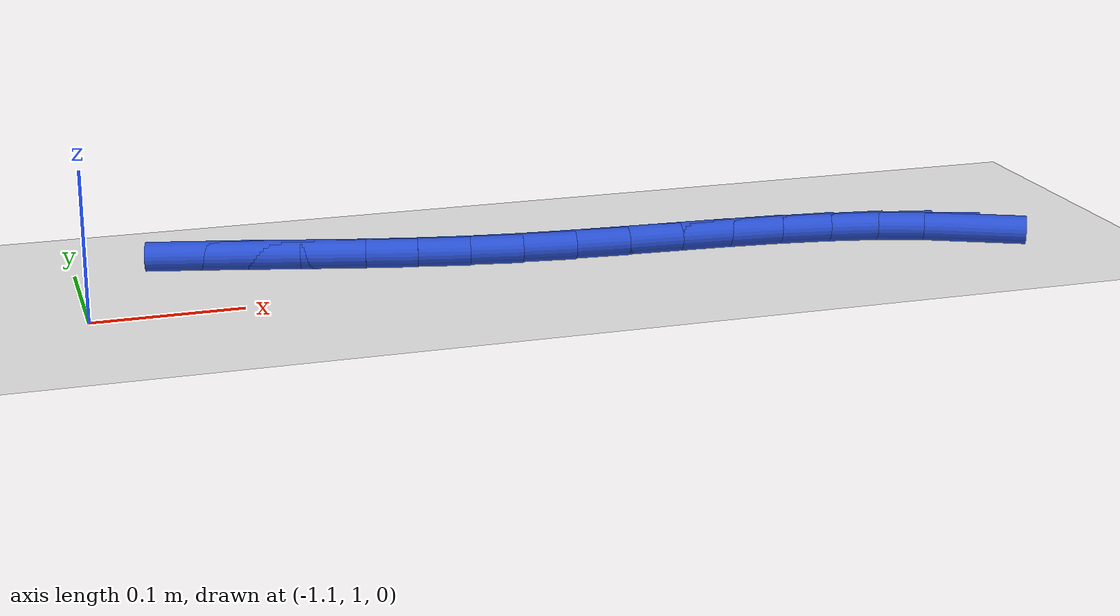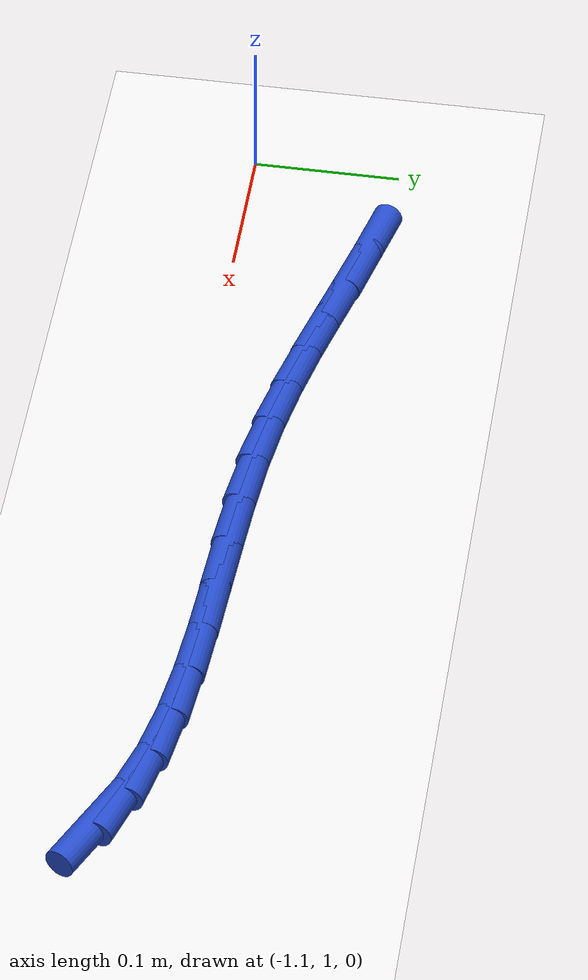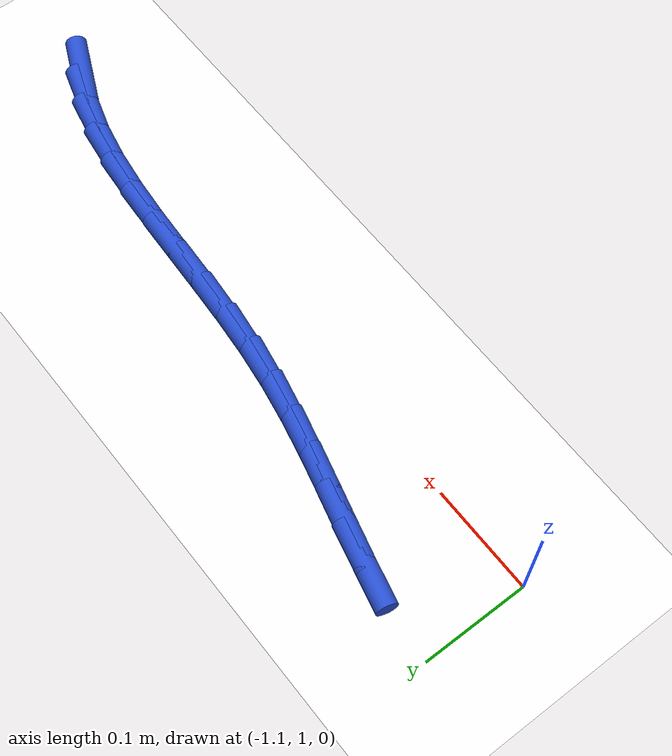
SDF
<sdf version="1.6">
 <world name="default">
  <model name="ground_plane">
   <static>1</static>
   <link name="link">
    <collision name="collision">
     <geometry><plane><normal>0 0 1</normal><size>100 100</size></plane></geometry>
     <surface><friction><ode><mu>100</mu><mu2>50</mu2></ode></friction></surface>
    </collision>
    <visual name="visual">
     <cast_shadows>0</cast_shadows>
     <geometry><plane><normal>0 0 1</normal><size>100 100</size></plane></geometry>
     <material>
      <script><uri>file://media/materials/scripts/gazebo.material</uri><name>Gazebo/WhiteGlow</name></script>
     </material>
    </visual>
   </link>
  </model>
  <model name="line">
   <link name="link_32">
    <pose>-0.48316314550023687 0.9966589572328235 0.01 0 1.57 -0.4373177974308187</pose>
    <collision name="collision">
     <geometry><cylinder><radius>0.01</radius><length>0.08</length></cylinder></geometry>
    </collision>
    <visual name="visual">
     <material>
      <script><name>Gazebo/Blue</name><uri>file://media/materials/scripts/gazebo.material</uri></script>
     </material>
     <geometry><cylinder><radius>0.01</radius><length>0.08</length></cylinder></geometry>
    </visual>
   </link>
   <link name="link_33">
    <pose>-0.5122079923193046 1.0102376549304726 0.01 0 1.57 -0.30500779651711574</pose>
    <collision name="collision">
     <geometry><cylinder><radius>0.01</radius><length>0.08</length></cylinder></geometry>
    </collision>
    <visual name="visual">
     <material>
      <script><name>Gazebo/Blue</name><uri>file://media/materials/scripts/gazebo.material</uri></script>
     </material>
     <geometry><cylinder><radius>0.01</radius><length>0.08</length></cylinder></geometry>
    </visual>
   </link>
   <link name="link_34">
    <pose>-0.5439549012439873 1.0202325912781687 0.01 0 1.57 -0.20490496469624225</pose>
    <collision name="collision">
     <geometry><cylinder><radius>0.01</radius><length>0.08</length></cylinder></geometry>
    </collision>
    <visual name="visual">
     <material>
      <script><name>Gazebo/Blue</name><uri>file://media/materials/scripts/gazebo.material</uri></script>
     </material>
     <geometry><cylinder><radius>0.01</radius><length>0.08</length></cylinder></geometry>
    </visual>
   </link>
   <link name="link_35">
    <pose>-0.5779444262157611 1.0272963513001305 0.01 0 1.57 -0.13297657358169426</pose>
    <collision name="collision">
     <geometry><cylinder><radius>0.01</radius><length>0.08</length></cylinder></geometry>
    </collision>
    <visual name="visual">
     <material>
      <script><name>Gazebo/Blue</name><uri>file://media/materials/scripts/gazebo.material</uri></script>
     </material>
     <geometry><cylinder><radius>0.01</radius><length>0.08</length></cylinder></geometry>
    </visual>
   </link>
   <link name="link_36">
    <pose>-0.6137171211761024 1.0320815200205775 0.01 0 1.57 -0.08495586529718346</pose>
    <collision name="collision">
     <geometry><cylinder><radius>0.01</radius><length>0.08</length></cylinder></geometry>
    </collision>
    <visual name="visual">
     <material>
      <script><name>Gazebo/Blue</name><uri>file://media/materials/scripts/gazebo.material</uri></script>
     </material>
     <geometry><cylinder><radius>0.01</radius><length>0.08</length></cylinder></geometry>
    </visual>
   </link>
   <link name="link_37">
    <pose>-0.6508135400664872 1.0352406824637286 0.01 0 1.57 -0.057515553515279275</pose>
    <collision name="collision">
     <geometry><cylinder><radius>0.01</radius><length>0.08</length></cylinder></geometry>
    </collision>
    <visual name="visual">
     <material>
      <script><name>Gazebo/Blue</name><uri>file://media/materials/scripts/gazebo.material</uri></script>
     </material>
     <geometry><cylinder><radius>0.01</radius><length>0.08</length></cylinder></geometry>
    </visual>
   </link>
   <link name="link_38">
    <pose>-0.6887742368283922 1.0374264236538036 0.01 0 1.57 -0.04857063870423929</pose>
    <collision name="collision">
     <geometry><cylinder><radius>0.01</radius><length>0.08</length></cylinder></geometry>
    </collision>
    <visual name="visual">
     <material>
      <script><name>Gazebo/Blue</name><uri>file://media/materials/scripts/gazebo.material</uri></script>
     </material>
     <geometry><cylinder><radius>0.01</radius><length>0.08</length></cylinder></geometry>
    </visual>
   </link>
   <link name="link_39">
    <pose>-0.7271397654032938 1.0392913286150214 0.01 0 1.57 -0.0572748340004048</pose>
    <collision name="collision">
     <geometry><cylinder><radius>0.01</radius><length>0.08</length></cylinder></geometry>
    </collision>
    <visual name="visual">
     <material>
      <script><name>Gazebo/Blue</name><uri>file://media/materials/scripts/gazebo.material</uri></script>
     </material>
     <geometry><cylinder><radius>0.01</radius><length>0.08</length></cylinder></geometry>
    </visual>
   </link>
   <link name="link_40">
    <pose>-0.7654506797326682 1.0414879823716015 0.01 0 1.57 -0.08396225511309346</pose>
    <collision name="collision">
     <geometry><cylinder><radius>0.01</radius><length>0.08</length></cylinder></geometry>
    </collision>
    <visual name="visual">
     <material>
      <script><name>Gazebo/Blue</name><uri>file://media/materials/scripts/gazebo.material</uri></script>
     </material>
     <geometry><cylinder><radius>0.01</radius><length>0.08</length></cylinder></geometry>
    </visual>
   </link>
   <link name="link_41">
    <pose>-0.8032475337579917 1.0446689699477634 0.01 0 1.57 -0.1295205380880872</pose>
    <collision name="collision">
     <geometry><cylinder><radius>0.01</radius><length>0.08</length></cylinder></geometry>
    </collision>
    <visual name="visual">
     <material>
      <script><name>Gazebo/Blue</name><uri>file://media/materials/scripts/gazebo.material</uri></script>
     </material>
     <geometry><cylinder><radius>0.01</radius><length>0.08</length></cylinder></geometry>
    </visual>
   </link>
   <link name="link_42">
    <pose>-0.8400833501035145 1.049466823664401 0.01 0 1.57 -0.18046137912852375</pose>
    <collision name="collision">
     <geometry><cylinder><radius>0.01</radius><length>0.08</length></cylinder></geometry>
    </collision>
    <visual name="visual">
     <material>
      <script><name>Gazebo/Blue</name><uri>file://media/materials/scripts/gazebo.material</uri></script>
     </material>
     <geometry><cylinder><radius>0.01</radius><length>0.08</length></cylinder></geometry>
    </visual>
   </link>
   <link name="link_43">
    <pose>-0.8758370497741585 1.055989951228765 0.01 0 1.57 -0.21975139844009897</pose>
    <collision name="collision">
     <geometry><cylinder><radius>0.01</radius><length>0.08</length></cylinder></geometry>
    </collision>
    <visual name="visual">
     <material>
      <script><name>Gazebo/Blue</name><uri>file://media/materials/scripts/gazebo.material</uri></script>
     </material>
     <geometry><cylinder><radius>0.01</radius><length>0.08</length></cylinder></geometry>
    </visual>
   </link>
   <link name="link_44">
    <pose>-0.9107367906990066 1.0637851016262407 0.01 0 1.57 -0.24535136960140017</pose>
    <collision name="collision">
     <geometry><cylinder><radius>0.01</radius><length>0.08</length></cylinder></geometry>
    </collision>
    <visual name="visual">
     <material>
      <script><name>Gazebo/Blue</name><uri>file://media/materials/scripts/gazebo.material</uri></script>
     </material>
     <geometry><cylinder><radius>0.01</radius><length>0.08</length></cylinder></geometry>
    </visual>
   </link>
   <link name="link_45">
    <pose>-0.9450278741995402 1.0723714530580353 0.01 0 1.57 -0.2564519328983843</pose>
    <collision name="collision">
     <geometry><cylinder><radius>0.01</radius><length>0.08</length></cylinder></geometry>
    </collision>
    <visual name="visual">
     <material>
      <script><name>Gazebo/Blue</name><uri>file://media/materials/scripts/gazebo.material</uri></script>
     </material>
     <geometry><cylinder><radius>0.01</radius><length>0.08</length></cylinder></geometry>
    </visual>
   </link>
   <link name="link_46">
    <pose>-0.9789556015972408 1.0812681837253542 0.01 0 1.57 -0.2525878655030559</pose>
    <collision name="collision">
     <geometry><cylinder><radius>0.01</radius><length>0.08</length></cylinder></geometry>
    </collision>
    <visual name="visual">
     <material>
      <script><name>Gazebo/Blue</name><uri>file://media/materials/scripts/gazebo.material</uri></script>
     </material>
     <geometry><cylinder><radius>0.01</radius><length>0.08</length></cylinder></geometry>
    </visual>
   </link>
   <link name="link_47">
    <pose>-1.0127652742135906 1.0899944718294032 0.01 0 1.57 -0.23359830717002084</pose>
    <collision name="collision">
     <geometry><cylinder><radius>0.01</radius><length>0.08</length></cylinder></geometry>
    </collision>
    <visual name="visual">
     <material>
      <script><name>Gazebo/Blue</name><uri>file://media/materials/scripts/gazebo.material</uri></script>
     </material>
     <geometry><cylinder><radius>0.01</radius><length>0.08</length></cylinder></geometry>
    </visual>
   </link>
  </model>
 </world>
</sdf>
